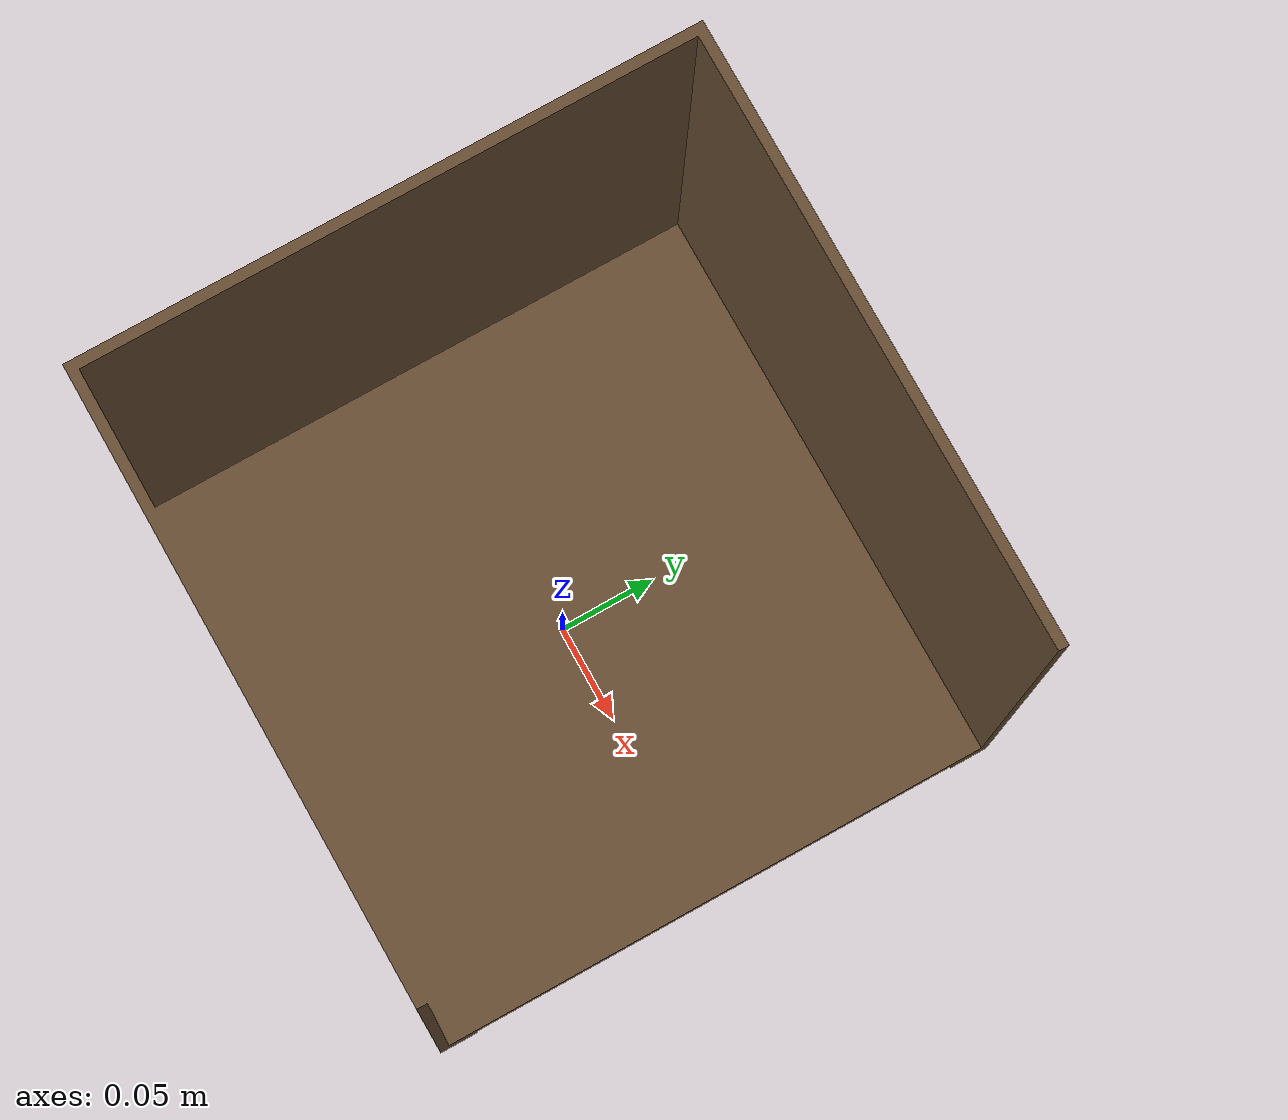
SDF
<?xml version='1.0' encoding='utf-8'?>
<sdf version="1.6">
  <model name="bookcube">
    <static>true</static>
    <link name="link">
      <pose>0 0 0 0 0 0</pose>

      <inertial>
        <mass>1.0</mass>
        <inertia>
          <ixx>0.166667</ixx>
          <ixy>0</ixy>
          <ixz>0</ixz>
          <iyy>0.166667</iyy>
          <iyz>0</iyz>
          <izz>0.166667</izz>
        </inertia>
      </inertial>

      <!-- Visual: Using user's STL mesh -->
      <visual name="visual">
        <geometry>
          <mesh>
            <uri>package://bookrobot_description/meshes/collision/bookcube_new.stl</uri>
            <scale>0.001 0.001 0.001</scale>
          </mesh>
        </geometry>
        <material>
          <ambient>0.4 0.3 0.2 1.0</ambient>
          <diffuse>0.4 0.3 0.2 1.0</diffuse>
          <specular>0.1 0.1 0.1 1.0</specular>
        </material>
      </visual>

      <!-- Collision: Using user's STL mesh -->
      <collision name="collision">
        <geometry>
          <mesh>
            <uri>package://bookrobot_description/meshes/collision/bookcube_new.stl</uri>
            <scale>0.001 0.001 0.001</scale>
          </mesh>
        </geometry>
      </collision>
    </link>
  </model>
</sdf>
